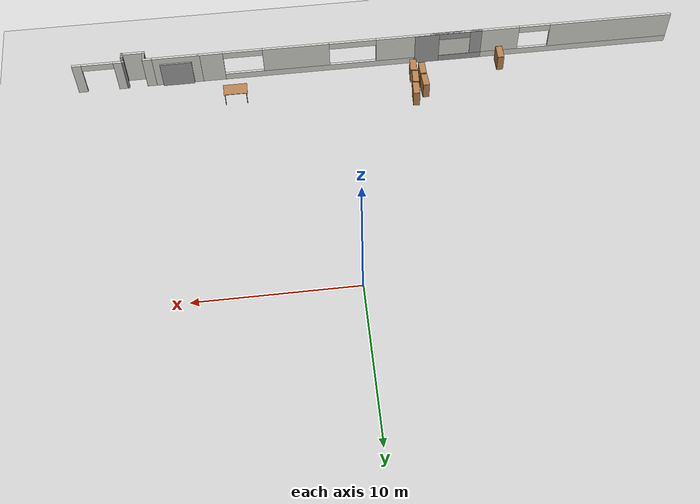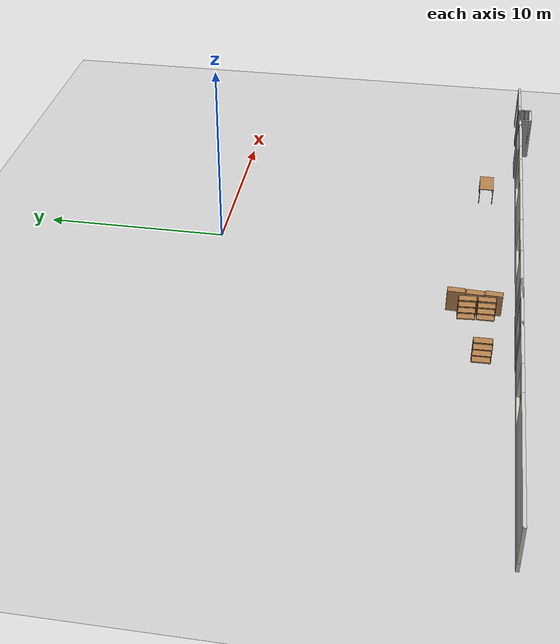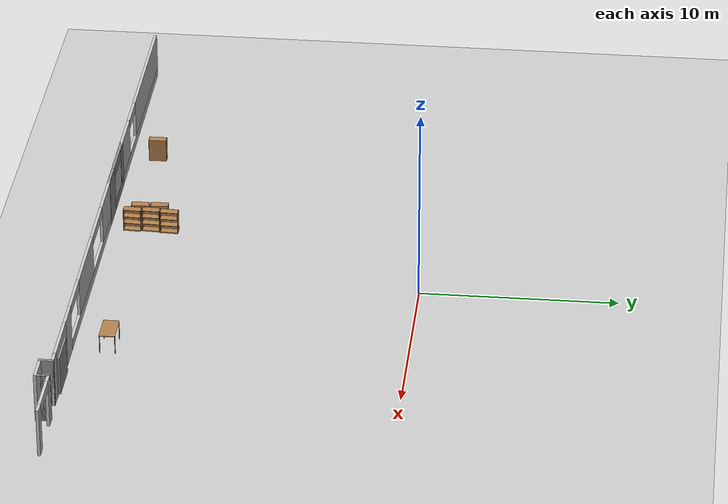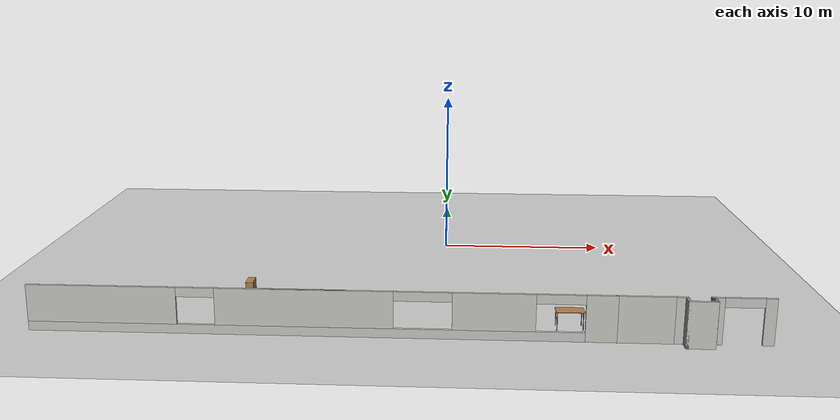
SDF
<sdf version="1.7">
 <world name="default">
  <model name="ground_plane">
   <static>1</static>
   <link name="link">
    <collision name="collision">
     <geometry><plane><normal>0 0 1</normal><size>100 100</size></plane></geometry>
     <surface><friction><ode><mu>100</mu><mu2>50</mu2></ode></friction></surface>
    </collision>
    <visual name="visual">
     <cast_shadows>0</cast_shadows>
     <geometry><plane><normal>0 0 1</normal><size>100 100</size></plane></geometry>
     <material>
      <script><uri>file://media/materials/scripts/gazebo.material</uri><name>Gazebo/Grey</name></script>
     </material>
    </visual>
   </link>
  </model>
  <model name="cps_lab_layout">
   <pose>-2.5615 -0.338224 0 0 -0 0</pose>
   <link name="Door_24">
    <collision name="Door_24_Collision">
     <geometry><box><size>2 0.17 2</size></box></geometry>
     <pose>0 0 1 0 -0 0</pose>
    </collision>
    <visual name="Door_24_Visual">
     <pose>0 0 1 0 -0 0</pose>
     <geometry><box><size>2 0.17 2</size></box></geometry>
     <material>
      <script><uri>file://media/materials/scripts/gazebo.material</uri><name>Gazebo/Grey</name></script>
     </material>
    </visual>
    <pose>12.706 -16.0168 0 0 -0 0</pose>
   </link>
   <link name="Wall_203">
    <collision name="Wall_203_Collision">
     <geometry><box><size>3 0.15 2.5</size></box></geometry>
     <pose>0 0 1.25 0 -0 0</pose>
    </collision>
    <visual name="Wall_203_Visual">
     <pose>0 0 1.25 0 -0 0</pose>
     <geometry><box><size>3 0.15 2.5</size></box></geometry>
     <material>
      <script><uri>file://media/materials/scripts/gazebo.material</uri><name>Gazebo/CeilingTiled</name></script>
      <ambient>0.760784 0.662745 0.627451 1</ambient>
     </material>
     <meta><layer>0</layer></meta>
    </visual>
    <pose>12.6417 -16.101 0 0 -0 0</pose>
   </link>
   <link name="Wall_210">
    <collision name="Wall_210_Collision">
     <geometry><box><size>0.75 0.15 2.5</size></box></geometry>
     <pose>0 0 1.25 0 -0 0</pose>
    </collision>
    <visual name="Wall_210_Visual">
     <pose>0 0 1.25 0 -0 0</pose>
     <geometry><box><size>0.75 0.15 2.5</size></box></geometry>
     <material>
      <script><uri>file://media/materials/scripts/gazebo.material</uri><name>Gazebo/CeilingTiled</name></script>
      <ambient>0.760784 0.662745 0.627451 1</ambient>
     </material>
     <meta><layer>0</layer></meta>
    </visual>
    <pose>14.3667 -16.101 0 0 -0 0</pose>
   </link>
   <link name="Wall_211">
    <collision name="Wall_211_Collision">
     <geometry><box><size>0.75 0.15 2.5</size></box></geometry>
     <pose>0 0 1.25 0 -0 0</pose>
    </collision>
    <visual name="Wall_211_Visual">
     <pose>0 0 1.25 0 -0 0</pose>
     <geometry><box><size>0.75 0.15 2.5</size></box></geometry>
     <material>
      <script><uri>file://media/materials/scripts/gazebo.material</uri><name>Gazebo/Grey</name></script>
      <ambient>1 1 1 1</ambient>
     </material>
     <meta><layer>0</layer></meta>
    </visual>
    <pose>14.6667 -16.401 0 0 -0 -1.5708</pose>
   </link>
   <link name="Wall_212">
    <collision name="Wall_212_Collision">
     <geometry><box><size>1.5 0.15 2.5</size></box></geometry>
     <pose>0 0 1.25 0 -0 0</pose>
    </collision>
    <visual name="Wall_212_Visual">
     <pose>0 0 1.25 0 -0 0</pose>
     <geometry><box><size>1.5 0.15 2.5</size></box></geometry>
     <material>
      <script><uri>file://media/materials/scripts/gazebo.material</uri><name>Gazebo/CeilingTiled</name></script>
      <ambient>0.760784 0.662745 0.627451 1</ambient>
     </material>
     <meta><layer>0</layer></meta>
    </visual>
    <pose>15.3417 -16.701 0 0 -0 0</pose>
   </link>
   <link name="Wall_213">
    <collision name="Wall_213_Collision">
     <geometry><box><size>0.5 0.15 2.5</size></box></geometry>
     <pose>0 0 1.25 0 -0 0</pose>
    </collision>
    <visual name="Wall_213_Visual">
     <pose>0 0 1.25 0 -0 0</pose>
     <geometry><box><size>0.5 0.15 2.5</size></box></geometry>
     <material>
      <script><uri>file://media/materials/scripts/gazebo.material</uri><name>Gazebo/Grey</name></script>
      <ambient>1 1 1 1</ambient>
     </material>
     <meta><layer>0</layer></meta>
    </visual>
    <pose>16.0167 -16.526 0 0 -0 1.5708</pose>
   </link>
   <link name="Wall_214">
    <collision name="Wall_214_Collision">
     <geometry><box><size>0.25 0.15 2.5</size></box></geometry>
     <pose>0 0 1.25 0 -0 0</pose>
    </collision>
    <visual name="Wall_214_Visual">
     <pose>0 0 1.25 0 -0 0</pose>
     <geometry><box><size>0.25 0.15 2.5</size></box></geometry>
     <material>
      <script><uri>file://media/materials/scripts/gazebo.material</uri><name>Gazebo/Grey</name></script>
      <ambient>1 1 1 1</ambient>
     </material>
     <meta><layer>0</layer></meta>
    </visual>
    <pose>16.0167 -16.301 0 0 -0 1.5708</pose>
   </link>
   <link name="Wall_216">
    <pose>17.5037 -16.0649 0 0 -0 3.14159</pose>
    <visual name="Wall_216_Visual_0">
     <pose>-1.33294 0 1.25 0 -0 0</pose>
     <geometry><box><size>0.584125 0.15 2.5</size></box></geometry>
     <material>
      <script><uri>file://media/materials/scripts/gazebo.material</uri><name>Gazebo/CeilingTiled</name></script>
      <ambient>0.760784 0.662745 0.627451 1</ambient>
     </material>
     <meta><layer>0</layer></meta>
    </visual>
    <collision name="Wall_216_Collision_0">
     <geometry><box><size>0.584125 0.15 2.5</size></box></geometry>
     <pose>-1.33294 0 1.25 0 -0 0</pose>
    </collision>
    <visual name="Wall_216_Visual_1">
     <pose>1.29206 0 1.25 0 -0 0</pose>
     <geometry><box><size>0.665875 0.15 2.5</size></box></geometry>
     <material>
      <script><uri>file://media/materials/scripts/gazebo.material</uri><name>Gazebo/CeilingTiled</name></script>
      <ambient>0.760784 0.662745 0.627451 1</ambient>
     </material>
     <meta><layer>0</layer></meta>
    </visual>
    <collision name="Wall_216_Collision_1">
     <geometry><box><size>0.665875 0.15 2.5</size></box></geometry>
     <pose>1.29206 0 1.25 0 -0 0</pose>
    </collision>
    <visual name="Wall_216_Visual_2">
     <pose>-0.040875 0 2.25 0 -0 0</pose>
     <geometry><box><size>2 0.15 0.5</size></box></geometry>
     <material>
      <script><uri>file://media/materials/scripts/gazebo.material</uri><name>Gazebo/CeilingTiled</name></script>
      <ambient>0.760784 0.662745 0.627451 1</ambient>
     </material>
     <meta><layer>0</layer></meta>
    </visual>
    <collision name="Wall_216_Collision_2">
     <geometry><box><size>2 0.15 0.5</size></box></geometry>
     <pose>-0.040875 0 2.25 0 -0 0</pose>
    </collision>
   </link>
   <link name="Wall_217">
    <collision name="Wall_217_Collision">
     <geometry><box><size>0.442956 0.15 2.5</size></box></geometry>
     <pose>0 0 1.25 0 -0 0</pose>
    </collision>
    <visual name="Wall_217_Visual">
     <pose>0 0 1.25 0 -0 0</pose>
     <geometry><box><size>0.442956 0.15 2.5</size></box></geometry>
     <material>
      <script><uri>file://media/materials/scripts/gazebo.material</uri><name>Gazebo/Grey</name></script>
      <ambient>1 1 1 1</ambient>
     </material>
     <meta><layer>0</layer></meta>
    </visual>
    <pose>15.9852 -16.208 0 0 -0 -1.35395</pose>
   </link>
   <link name="Wall_79">
    <pose>-3.95831 -16.101 0 0 -0 3.14159</pose>
    <visual name="Wall_79_Visual_0">
     <pose>-14.447 0 1.25 0 -0 0</pose>
     <geometry><box><size>1.606 0.15 2.5</size></box></geometry>
     <material>
      <script><uri>file://media/materials/scripts/gazebo.material</uri><name>Gazebo/CeilingTiled</name></script>
      <ambient>0.760784 0.662745 0.627451 1</ambient>
     </material>
     <meta><layer>0</layer></meta>
    </visual>
    <collision name="Wall_79_Collision_0">
     <geometry><box><size>1.606 0.15 2.5</size></box></geometry>
     <pose>-14.447 0 1.25 0 -0 0</pose>
    </collision>
    <visual name="Wall_79_Visual_1">
     <pose>0.803 0 0.25 0 -0 0</pose>
     <geometry><box><size>28.894 0.15 0.5</size></box></geometry>
     <material>
      <script><uri>file://media/materials/scripts/gazebo.material</uri><name>Gazebo/CeilingTiled</name></script>
      <ambient>0.760784 0.662745 0.627451 1</ambient>
     </material>
     <meta><layer>0</layer></meta>
    </visual>
    <collision name="Wall_79_Collision_1">
     <geometry><box><size>28.894 0.15 0.5</size></box></geometry>
     <pose>0.803 0 0.25 0 -0 0</pose>
    </collision>
    <visual name="Wall_79_Visual_2">
     <pose>-9.01853 0 1.5 0 -0 0</pose>
     <geometry><box><size>4.25094 0.15 2</size></box></geometry>
     <material>
      <script><uri>file://media/materials/scripts/gazebo.material</uri><name>Gazebo/CeilingTiled</name></script>
      <ambient>0.760784 0.662745 0.627451 1</ambient>
     </material>
     <meta><layer>0</layer></meta>
    </visual>
    <collision name="Wall_79_Collision_2">
     <geometry><box><size>4.25094 0.15 2</size></box></geometry>
     <pose>-9.01853 0 1.5 0 -0 0</pose>
    </collision>
    <visual name="Wall_79_Visual_3">
     <pose>0.731796 0 1.5 0 -0 0</pose>
     <geometry><box><size>9.24971 0.15 2</size></box></geometry>
     <material>
      <script><uri>file://media/materials/scripts/gazebo.material</uri><name>Gazebo/CeilingTiled</name></script>
      <ambient>0.760784 0.662745 0.627451 1</ambient>
     </material>
     <meta><layer>0</layer></meta>
    </visual>
    <collision name="Wall_79_Collision_3">
     <geometry><box><size>9.24971 0.15 2</size></box></geometry>
     <pose>0.731796 0 1.5 0 -0 0</pose>
    </collision>
    <visual name="Wall_79_Visual_4">
     <pose>11.3033 0 1.5 0 -0 0</pose>
     <geometry><box><size>7.89335 0.15 2</size></box></geometry>
     <material>
      <script><uri>file://media/materials/scripts/gazebo.material</uri><name>Gazebo/CeilingTiled</name></script>
      <ambient>0.760784 0.662745 0.627451 1</ambient>
     </material>
     <meta><layer>0</layer></meta>
    </visual>
    <collision name="Wall_79_Collision_4">
     <geometry><box><size>7.89335 0.15 2</size></box></geometry>
     <pose>11.3033 0 1.5 0 -0 0</pose>
    </collision>
    <visual name="Wall_79_Visual_5">
     <pose>-12.394 0 2.25 0 -0 0</pose>
     <geometry><box><size>2.5 0.15 0.5</size></box></geometry>
     <material>
      <script><uri>file://media/materials/scripts/gazebo.material</uri><name>Gazebo/CeilingTiled</name></script>
      <ambient>0.760784 0.662745 0.627451 1</ambient>
     </material>
     <meta><layer>0</layer></meta>
    </visual>
    <collision name="Wall_79_Collision_5">
     <geometry><box><size>2.5 0.15 0.5</size></box></geometry>
     <pose>-12.394 0 2.25 0 -0 0</pose>
    </collision>
    <visual name="Wall_79_Visual_6">
     <pose>-5.39306 0 2.25 0 -0 0</pose>
     <geometry><box><size>3 0.15 0.5</size></box></geometry>
     <material>
      <script><uri>file://media/materials/scripts/gazebo.material</uri><name>Gazebo/CeilingTiled</name></script>
      <ambient>0.760784 0.662745 0.627451 1</ambient>
     </material>
     <meta><layer>0</layer></meta>
    </visual>
    <collision name="Wall_79_Collision_6">
     <geometry><box><size>3 0.15 0.5</size></box></geometry>
     <pose>-5.39306 0 2.25 0 -0 0</pose>
    </collision>
    <visual name="Wall_79_Visual_7">
     <pose>6.35665 0 2.25 0 -0 0</pose>
     <geometry><box><size>2 0.15 0.5</size></box></geometry>
     <material>
      <script><uri>file://media/materials/scripts/gazebo.material</uri><name>Gazebo/CeilingTiled</name></script>
      <ambient>0.760784 0.662745 0.627451 1</ambient>
     </material>
     <meta><layer>0</layer></meta>
    </visual>
    <collision name="Wall_79_Collision_7">
     <geometry><box><size>2 0.15 0.5</size></box></geometry>
     <pose>6.35665 0 2.25 0 -0 0</pose>
    </collision>
   </link>
   <link name="Wall_84">
    <pose>-4.73452 -16.0903 0 0 -0 3.14159</pose>
    <visual name="Wall_84_Visual_0">
     <pose>-1.37569 0 1.25 0 -0 0</pose>
     <geometry><box><size>1.56897 0.15 2.5</size></box></geometry>
     <material>
      <script><uri>file://media/materials/scripts/gazebo.material</uri><name>Gazebo/Grey</name></script>
      <ambient>1 1 1 1</ambient>
     </material>
     <meta><layer>0</layer></meta>
    </visual>
    <collision name="Wall_84_Collision_0">
     <geometry><box><size>1.56897 0.15 2.5</size></box></geometry>
     <pose>-1.37569 0 1.25 0 -0 0</pose>
    </collision>
    <visual name="Wall_84_Visual_1">
     <pose>0.784487 0 0.25 0 -0 0</pose>
     <geometry><box><size>2.75138 0.15 0.5</size></box></geometry>
     <material>
      <script><uri>file://media/materials/scripts/gazebo.material</uri><name>Gazebo/Grey</name></script>
      <ambient>1 1 1 1</ambient>
     </material>
     <meta><layer>0</layer></meta>
    </visual>
    <collision name="Wall_84_Collision_1">
     <geometry><box><size>2.75138 0.15 0.5</size></box></geometry>
     <pose>0.784487 0 0.25 0 -0 0</pose>
    </collision>
    <visual name="Wall_84_Visual_2">
     <pose>1.78449 0 1.5 0 -0 0</pose>
     <geometry><box><size>0.751384 0.15 2</size></box></geometry>
     <material>
      <script><uri>file://media/materials/scripts/gazebo.material</uri><name>Gazebo/Grey</name></script>
      <ambient>1 1 1 1</ambient>
     </material>
     <meta><layer>0</layer></meta>
    </visual>
    <collision name="Wall_84_Collision_2">
     <geometry><box><size>0.751384 0.15 2</size></box></geometry>
     <pose>1.78449 0 1.5 0 -0 0</pose>
    </collision>
    <visual name="Wall_84_Visual_3">
     <pose>0.408794 0 2.25 0 -0 0</pose>
     <geometry><box><size>2 0.15 0.5</size></box></geometry>
     <material>
      <script><uri>file://media/materials/scripts/gazebo.material</uri><name>Gazebo/Grey</name></script>
      <ambient>1 1 1 1</ambient>
     </material>
     <meta><layer>0</layer></meta>
    </visual>
    <collision name="Wall_84_Collision_3">
     <geometry><box><size>2 0.15 0.5</size></box></geometry>
     <pose>0.408794 0 2.25 0 -0 0</pose>
    </collision>
   </link>
   <static>1</static>
  </model>
  <model name="Table">
   <static>1</static>
   <link name="link">
    <collision name="surface">
     <pose>0 0 1 0 -0 0</pose>
     <geometry><box><size>1.5 0.8 0.03</size></box></geometry>
     <surface><friction><ode><mu>0.6</mu><mu2>0.6</mu2></ode></friction></surface>
    </collision>
    <visual name="visual1">
     <pose>0 0 1 0 -0 0</pose>
     <geometry><box><size>1.5 0.8 0.03</size></box></geometry>
     <material>
      <diffuse>1 1 1 1</diffuse>
      <script><uri>file://media/materials/scripts/gazebo.material</uri><name>Gazebo/Wood</name></script>
      <pbr>
       <metal>
        <albedo_map>https://fuel.ignitionrobotics.org/1.0/openrobotics/models/table/4/files/Table_Diffuse.jpg</albedo_map>
       </metal>
      </pbr>
     </material>
    </visual>
    <collision name="front_left_leg">
     <pose>0.68 0.38 0.5 0 -0 0</pose>
     <geometry><cylinder><radius>0.02</radius><length>1</length></cylinder></geometry>
    </collision>
    <visual name="front_left_leg">
     <pose>0.68 0.38 0.5 0 -0 0</pose>
     <geometry><cylinder><radius>0.02</radius><length>1</length></cylinder></geometry>
     <material>
      <diffuse>0.5 0.5 0.5 1</diffuse>
      <script><uri>file://media/materials/scripts/gazebo.material</uri><name>Gazebo/Grey</name></script>
     </material>
    </visual>
    <collision name="front_right_leg">
     <pose>0.68 -0.38 0.5 0 -0 0</pose>
     <geometry><cylinder><radius>0.02</radius><length>1</length></cylinder></geometry>
    </collision>
    <visual name="front_right_leg">
     <pose>0.68 -0.38 0.5 0 -0 0</pose>
     <geometry><cylinder><radius>0.02</radius><length>1</length></cylinder></geometry>
     <material>
      <diffuse>0.5 0.5 0.5 1</diffuse>
      <script><uri>file://media/materials/scripts/gazebo.material</uri><name>Gazebo/Grey</name></script>
     </material>
    </visual>
    <collision name="back_right_leg">
     <pose>-0.68 -0.38 0.5 0 -0 0</pose>
     <geometry><cylinder><radius>0.02</radius><length>1</length></cylinder></geometry>
    </collision>
    <visual name="back_right_leg">
     <pose>-0.68 -0.38 0.5 0 -0 0</pose>
     <geometry><cylinder><radius>0.02</radius><length>1</length></cylinder></geometry>
     <material>
      <diffuse>0.5 0.5 0.5 1</diffuse>
      <script><uri>file://media/materials/scripts/gazebo.material</uri><name>Gazebo/Grey</name></script>
     </material>
    </visual>
    <collision name="back_left_leg">
     <pose>-0.68 0.38 0.5 0 -0 0</pose>
     <geometry><cylinder><radius>0.02</radius><length>1</length></cylinder></geometry>
    </collision>
    <visual name="back_left_leg">
     <pose>-0.68 0.38 0.5 0 -0 0</pose>
     <geometry><cylinder><radius>0.02</radius><length>1</length></cylinder></geometry>
     <material>
      <diffuse>0.5 0.5 0.5 1</diffuse>
      <script><uri>file://media/materials/scripts/gazebo.material</uri><name>Gazebo/Grey</name></script>
     </material>
    </visual>
   </link>
   <pose>6.54375 -14.6231 0 0 -0 0</pose>
  </model>
  <model name="Bookshelf_1">
   <static>1</static>
   <link name="link">
    <inertial><mass>1</mass></inertial>
    <collision name="back">
     <pose>0 0.005 0.6 0 -0 0</pose>
     <geometry><box><size>0.9 0.01 1.2</size></box></geometry>
    </collision>
    <visual name="visual1">
     <pose>0 0.005 0.6 0 -0 0</pose>
     <geometry><box><size>0.9 0.01 1.2</size></box></geometry>
     <material>
      <diffuse>1 1 1 1</diffuse>
      <script><uri>file://media/materials/scripts/gazebo.material</uri><name>Gazebo/Wood</name></script>
      <pbr>
       <metal>
        <albedo_map>https://fuel.gazebosim.org/1.0/openrobotics/models/bookshelf/4/files/bookshelf_diffuse.jpg</albedo_map>
       </metal>
      </pbr>
     </material>
    </visual>
    <collision name="left_side">
     <pose>0.45 -0.195 0.6 0 -0 0</pose>
     <geometry><box><size>0.02 0.4 1.2</size></box></geometry>
    </collision>
    <visual name="visual2">
     <pose>0.45 -0.195 0.6 0 -0 0</pose>
     <geometry><box><size>0.02 0.4 1.2</size></box></geometry>
     <material>
      <diffuse>1 1 1 1</diffuse>
      <script><uri>file://media/materials/scripts/gazebo.material</uri><name>Gazebo/Wood</name></script>
      <pbr>
       <metal>
        <albedo_map>https://fuel.gazebosim.org/1.0/openrobotics/models/bookshelf/4/files/bookshelf_diffuse.jpg</albedo_map>
       </metal>
      </pbr>
     </material>
    </visual>
    <collision name="right_side">
     <pose>-0.45 -0.195 0.6 0 -0 0</pose>
     <geometry><box><size>0.02 0.4 1.2</size></box></geometry>
    </collision>
    <visual name="visual3">
     <pose>-0.45 -0.195 0.6 0 -0 0</pose>
     <geometry><box><size>0.02 0.4 1.2</size></box></geometry>
     <material>
      <diffuse>1 1 1 1</diffuse>
      <script><uri>file://media/materials/scripts/gazebo.material</uri><name>Gazebo/Wood</name></script>
      <pbr>
       <metal>
        <albedo_map>https://fuel.gazebosim.org/1.0/openrobotics/models/bookshelf/4/files/bookshelf_diffuse.jpg</albedo_map>
       </metal>
      </pbr>
     </material>
    </visual>
    <collision name="bottom">
     <pose>0 -0.195 0.03 0 -0 0</pose>
     <geometry><box><size>0.88 0.4 0.06</size></box></geometry>
    </collision>
    <visual name="visual4">
     <pose>0 -0.195 0.03 0 -0 0</pose>
     <geometry><box><size>0.88 0.4 0.06</size></box></geometry>
     <material>
      <diffuse>1 1 1 1</diffuse>
      <script><uri>file://media/materials/scripts/gazebo.material</uri><name>Gazebo/Wood</name></script>
      <pbr>
       <metal>
        <albedo_map>https://fuel.gazebosim.org/1.0/openrobotics/models/bookshelf/4/files/bookshelf_diffuse.jpg</albedo_map>
       </metal>
      </pbr>
     </material>
    </visual>
    <collision name="top">
     <pose>0 -0.195 1.19 0 -0 0</pose>
     <geometry><box><size>0.88 0.4 0.02</size></box></geometry>
    </collision>
    <visual name="visual5">
     <pose>0 -0.195 1.19 0 -0 0</pose>
     <geometry><box><size>0.88 0.4 0.02</size></box></geometry>
     <material>
      <diffuse>1 1 1 1</diffuse>
      <script><uri>file://media/materials/scripts/gazebo.material</uri><name>Gazebo/Wood</name></script>
      <pbr>
       <metal>
        <albedo_map>https://fuel.gazebosim.org/1.0/openrobotics/models/bookshelf/4/files/bookshelf_diffuse.jpg</albedo_map>
       </metal>
      </pbr>
     </material>
    </visual>
    <collision name="low_shelf">
     <pose>0 -0.195 0.43 0 -0 0</pose>
     <geometry><box><size>0.88 0.4 0.02</size></box></geometry>
    </collision>
    <visual name="visual6">
     <pose>0 -0.195 0.43 0 -0 0</pose>
     <geometry><box><size>0.88 0.4 0.02</size></box></geometry>
     <material>
      <diffuse>1 1 1 1</diffuse>
      <script><uri>file://media/materials/scripts/gazebo.material</uri><name>Gazebo/Wood</name></script>
      <pbr>
       <metal>
        <albedo_map>https://fuel.gazebosim.org/1.0/openrobotics/models/bookshelf/4/files/bookshelf_diffuse.jpg</albedo_map>
       </metal>
      </pbr>
     </material>
    </visual>
    <collision name="high_shelf">
     <pose>0 -0.195 0.8 0 -0 0</pose>
     <geometry><box><size>0.88 0.4 0.02</size></box></geometry>
    </collision>
    <visual name="visual7">
     <pose>0 -0.195 0.8 0 -0 0</pose>
     <geometry><box><size>0.88 0.4 0.02</size></box></geometry>
     <material>
      <diffuse>1 1 1 1</diffuse>
      <script><uri>file://media/materials/scripts/gazebo.material</uri><name>Gazebo/Wood</name></script>
      <pbr>
       <metal>
        <albedo_map>https://fuel.gazebosim.org/1.0/openrobotics/models/bookshelf/4/files/bookshelf_diffuse.jpg</albedo_map>
       </metal>
      </pbr>
     </material>
    </visual>
   </link>
   <pose>-5.28631 -13.8634 0 0 0 -1.50561</pose>
  </model>
  <model name="Bookshelf_2">
   <static>1</static>
   <link name="link">
    <inertial><mass>1</mass></inertial>
    <collision name="back">
     <pose>0 0.005 0.6 0 -0 0</pose>
     <geometry><box><size>0.9 0.01 1.2</size></box></geometry>
    </collision>
    <visual name="visual1">
     <pose>0 0.005 0.6 0 -0 0</pose>
     <geometry><box><size>0.9 0.01 1.2</size></box></geometry>
     <material>
      <diffuse>1 1 1 1</diffuse>
      <script><uri>file://media/materials/scripts/gazebo.material</uri><name>Gazebo/Wood</name></script>
      <pbr>
       <metal>
        <albedo_map>https://fuel.gazebosim.org/1.0/openrobotics/models/bookshelf/4/files/bookshelf_diffuse.jpg</albedo_map>
       </metal>
      </pbr>
     </material>
    </visual>
    <collision name="left_side">
     <pose>0.45 -0.195 0.6 0 -0 0</pose>
     <geometry><box><size>0.02 0.4 1.2</size></box></geometry>
    </collision>
    <visual name="visual2">
     <pose>0.45 -0.195 0.6 0 -0 0</pose>
     <geometry><box><size>0.02 0.4 1.2</size></box></geometry>
     <material>
      <diffuse>1 1 1 1</diffuse>
      <script><uri>file://media/materials/scripts/gazebo.material</uri><name>Gazebo/Wood</name></script>
      <pbr>
       <metal>
        <albedo_map>https://fuel.gazebosim.org/1.0/openrobotics/models/bookshelf/4/files/bookshelf_diffuse.jpg</albedo_map>
       </metal>
      </pbr>
     </material>
    </visual>
    <collision name="right_side">
     <pose>-0.45 -0.195 0.6 0 -0 0</pose>
     <geometry><box><size>0.02 0.4 1.2</size></box></geometry>
    </collision>
    <visual name="visual3">
     <pose>-0.45 -0.195 0.6 0 -0 0</pose>
     <geometry><box><size>0.02 0.4 1.2</size></box></geometry>
     <material>
      <diffuse>1 1 1 1</diffuse>
      <script><uri>file://media/materials/scripts/gazebo.material</uri><name>Gazebo/Wood</name></script>
      <pbr>
       <metal>
        <albedo_map>https://fuel.gazebosim.org/1.0/openrobotics/models/bookshelf/4/files/bookshelf_diffuse.jpg</albedo_map>
       </metal>
      </pbr>
     </material>
    </visual>
    <collision name="bottom">
     <pose>0 -0.195 0.03 0 -0 0</pose>
     <geometry><box><size>0.88 0.4 0.06</size></box></geometry>
    </collision>
    <visual name="visual4">
     <pose>0 -0.195 0.03 0 -0 0</pose>
     <geometry><box><size>0.88 0.4 0.06</size></box></geometry>
     <material>
      <diffuse>1 1 1 1</diffuse>
      <script><uri>file://media/materials/scripts/gazebo.material</uri><name>Gazebo/Wood</name></script>
      <pbr>
       <metal>
        <albedo_map>https://fuel.gazebosim.org/1.0/openrobotics/models/bookshelf/4/files/bookshelf_diffuse.jpg</albedo_map>
       </metal>
      </pbr>
     </material>
    </visual>
    <collision name="top">
     <pose>0 -0.195 1.19 0 -0 0</pose>
     <geometry><box><size>0.88 0.4 0.02</size></box></geometry>
    </collision>
    <visual name="visual5">
     <pose>0 -0.195 1.19 0 -0 0</pose>
     <geometry><box><size>0.88 0.4 0.02</size></box></geometry>
     <material>
      <diffuse>1 1 1 1</diffuse>
      <script><uri>file://media/materials/scripts/gazebo.material</uri><name>Gazebo/Wood</name></script>
      <pbr>
       <metal>
        <albedo_map>https://fuel.gazebosim.org/1.0/openrobotics/models/bookshelf/4/files/bookshelf_diffuse.jpg</albedo_map>
       </metal>
      </pbr>
     </material>
    </visual>
    <collision name="low_shelf">
     <pose>0 -0.195 0.43 0 -0 0</pose>
     <geometry><box><size>0.88 0.4 0.02</size></box></geometry>
    </collision>
    <visual name="visual6">
     <pose>0 -0.195 0.43 0 -0 0</pose>
     <geometry><box><size>0.88 0.4 0.02</size></box></geometry>
     <material>
      <diffuse>1 1 1 1</diffuse>
      <script><uri>file://media/materials/scripts/gazebo.material</uri><name>Gazebo/Wood</name></script>
      <pbr>
       <metal>
        <albedo_map>https://fuel.gazebosim.org/1.0/openrobotics/models/bookshelf/4/files/bookshelf_diffuse.jpg</albedo_map>
       </metal>
      </pbr>
     </material>
    </visual>
    <collision name="high_shelf">
     <pose>0 -0.195 0.8 0 -0 0</pose>
     <geometry><box><size>0.88 0.4 0.02</size></box></geometry>
    </collision>
    <visual name="visual7">
     <pose>0 -0.195 0.8 0 -0 0</pose>
     <geometry><box><size>0.88 0.4 0.02</size></box></geometry>
     <material>
      <diffuse>1 1 1 1</diffuse>
      <script><uri>file://media/materials/scripts/gazebo.material</uri><name>Gazebo/Wood</name></script>
      <pbr>
       <metal>
        <albedo_map>https://fuel.gazebosim.org/1.0/openrobotics/models/bookshelf/4/files/bookshelf_diffuse.jpg</albedo_map>
       </metal>
      </pbr>
     </material>
    </visual>
   </link>
   <pose>-5.23927 -14.8593 0 0 0 -1.55053</pose>
  </model>
  <model name="Bookshelf_clone">
   <static>1</static>
   <link name="link">
    <inertial><mass>1</mass></inertial>
    <collision name="back">
     <pose>0 0.005 0.6 0 -0 0</pose>
     <geometry><box><size>0.9 0.01 1.2</size></box></geometry>
    </collision>
    <visual name="visual1">
     <pose>0 0.005 0.6 0 -0 0</pose>
     <geometry><box><size>0.9 0.01 1.2</size></box></geometry>
     <material>
      <diffuse>1 1 1 1</diffuse>
      <script><uri>file://media/materials/scripts/gazebo.material</uri><name>Gazebo/Wood</name></script>
      <pbr>
       <metal>
        <albedo_map>https://fuel.gazebosim.org/1.0/openrobotics/models/bookshelf/4/files/bookshelf_diffuse.jpg</albedo_map>
       </metal>
      </pbr>
     </material>
    </visual>
    <collision name="left_side">
     <pose>0.45 -0.195 0.6 0 -0 0</pose>
     <geometry><box><size>0.02 0.4 1.2</size></box></geometry>
    </collision>
    <visual name="visual2">
     <pose>0.45 -0.195 0.6 0 -0 0</pose>
     <geometry><box><size>0.02 0.4 1.2</size></box></geometry>
     <material>
      <diffuse>1 1 1 1</diffuse>
      <script><uri>file://media/materials/scripts/gazebo.material</uri><name>Gazebo/Wood</name></script>
      <pbr>
       <metal>
        <albedo_map>https://fuel.gazebosim.org/1.0/openrobotics/models/bookshelf/4/files/bookshelf_diffuse.jpg</albedo_map>
       </metal>
      </pbr>
     </material>
    </visual>
    <collision name="right_side">
     <pose>-0.45 -0.195 0.6 0 -0 0</pose>
     <geometry><box><size>0.02 0.4 1.2</size></box></geometry>
    </collision>
    <visual name="visual3">
     <pose>-0.45 -0.195 0.6 0 -0 0</pose>
     <geometry><box><size>0.02 0.4 1.2</size></box></geometry>
     <material>
      <diffuse>1 1 1 1</diffuse>
      <script><uri>file://media/materials/scripts/gazebo.material</uri><name>Gazebo/Wood</name></script>
      <pbr>
       <metal>
        <albedo_map>https://fuel.gazebosim.org/1.0/openrobotics/models/bookshelf/4/files/bookshelf_diffuse.jpg</albedo_map>
       </metal>
      </pbr>
     </material>
    </visual>
    <collision name="bottom">
     <pose>0 -0.195 0.03 0 -0 0</pose>
     <geometry><box><size>0.88 0.4 0.06</size></box></geometry>
    </collision>
    <visual name="visual4">
     <pose>0 -0.195 0.03 0 -0 0</pose>
     <geometry><box><size>0.88 0.4 0.06</size></box></geometry>
     <material>
      <diffuse>1 1 1 1</diffuse>
      <script><uri>file://media/materials/scripts/gazebo.material</uri><name>Gazebo/Wood</name></script>
      <pbr>
       <metal>
        <albedo_map>https://fuel.gazebosim.org/1.0/openrobotics/models/bookshelf/4/files/bookshelf_diffuse.jpg</albedo_map>
       </metal>
      </pbr>
     </material>
    </visual>
    <collision name="top">
     <pose>0 -0.195 1.19 0 -0 0</pose>
     <geometry><box><size>0.88 0.4 0.02</size></box></geometry>
    </collision>
    <visual name="visual5">
     <pose>0 -0.195 1.19 0 -0 0</pose>
     <geometry><box><size>0.88 0.4 0.02</size></box></geometry>
     <material>
      <diffuse>1 1 1 1</diffuse>
      <script><uri>file://media/materials/scripts/gazebo.material</uri><name>Gazebo/Wood</name></script>
      <pbr>
       <metal>
        <albedo_map>https://fuel.gazebosim.org/1.0/openrobotics/models/bookshelf/4/files/bookshelf_diffuse.jpg</albedo_map>
       </metal>
      </pbr>
     </material>
    </visual>
    <collision name="low_shelf">
     <pose>0 -0.195 0.43 0 -0 0</pose>
     <geometry><box><size>0.88 0.4 0.02</size></box></geometry>
    </collision>
    <visual name="visual6">
     <pose>0 -0.195 0.43 0 -0 0</pose>
     <geometry><box><size>0.88 0.4 0.02</size></box></geometry>
     <material>
      <diffuse>1 1 1 1</diffuse>
      <script><uri>file://media/materials/scripts/gazebo.material</uri><name>Gazebo/Wood</name></script>
      <pbr>
       <metal>
        <albedo_map>https://fuel.gazebosim.org/1.0/openrobotics/models/bookshelf/4/files/bookshelf_diffuse.jpg</albedo_map>
       </metal>
      </pbr>
     </material>
    </visual>
    <collision name="high_shelf">
     <pose>0 -0.195 0.8 0 -0 0</pose>
     <geometry><box><size>0.88 0.4 0.02</size></box></geometry>
    </collision>
    <visual name="visual7">
     <pose>0 -0.195 0.8 0 -0 0</pose>
     <geometry><box><size>0.88 0.4 0.02</size></box></geometry>
     <material>
      <diffuse>1 1 1 1</diffuse>
      <script><uri>file://media/materials/scripts/gazebo.material</uri><name>Gazebo/Wood</name></script>
      <pbr>
       <metal>
        <albedo_map>https://fuel.gazebosim.org/1.0/openrobotics/models/bookshelf/4/files/bookshelf_diffuse.jpg</albedo_map>
       </metal>
      </pbr>
     </material>
    </visual>
   </link>
   <pose>-5.10787 -14.2255 0 0 -0 1.51984</pose>
  </model>
  <model name="Bookshelf_clone_0">
   <static>1</static>
   <link name="link">
    <inertial><mass>1</mass></inertial>
    <collision name="back">
     <pose>0 0.005 0.6 0 -0 0</pose>
     <geometry><box><size>0.9 0.01 1.2</size></box></geometry>
    </collision>
    <visual name="visual1">
     <pose>0 0.005 0.6 0 -0 0</pose>
     <geometry><box><size>0.9 0.01 1.2</size></box></geometry>
     <material>
      <diffuse>1 1 1 1</diffuse>
      <script><uri>file://media/materials/scripts/gazebo.material</uri><name>Gazebo/Wood</name></script>
      <pbr>
       <metal>
        <albedo_map>https://fuel.gazebosim.org/1.0/openrobotics/models/bookshelf/4/files/bookshelf_diffuse.jpg</albedo_map>
       </metal>
      </pbr>
     </material>
    </visual>
    <collision name="left_side">
     <pose>0.45 -0.195 0.6 0 -0 0</pose>
     <geometry><box><size>0.02 0.4 1.2</size></box></geometry>
    </collision>
    <visual name="visual2">
     <pose>0.45 -0.195 0.6 0 -0 0</pose>
     <geometry><box><size>0.02 0.4 1.2</size></box></geometry>
     <material>
      <diffuse>1 1 1 1</diffuse>
      <script><uri>file://media/materials/scripts/gazebo.material</uri><name>Gazebo/Wood</name></script>
      <pbr>
       <metal>
        <albedo_map>https://fuel.gazebosim.org/1.0/openrobotics/models/bookshelf/4/files/bookshelf_diffuse.jpg</albedo_map>
       </metal>
      </pbr>
     </material>
    </visual>
    <collision name="right_side">
     <pose>-0.45 -0.195 0.6 0 -0 0</pose>
     <geometry><box><size>0.02 0.4 1.2</size></box></geometry>
    </collision>
    <visual name="visual3">
     <pose>-0.45 -0.195 0.6 0 -0 0</pose>
     <geometry><box><size>0.02 0.4 1.2</size></box></geometry>
     <material>
      <diffuse>1 1 1 1</diffuse>
      <script><uri>file://media/materials/scripts/gazebo.material</uri><name>Gazebo/Wood</name></script>
      <pbr>
       <metal>
        <albedo_map>https://fuel.gazebosim.org/1.0/openrobotics/models/bookshelf/4/files/bookshelf_diffuse.jpg</albedo_map>
       </metal>
      </pbr>
     </material>
    </visual>
    <collision name="bottom">
     <pose>0 -0.195 0.03 0 -0 0</pose>
     <geometry><box><size>0.88 0.4 0.06</size></box></geometry>
    </collision>
    <visual name="visual4">
     <pose>0 -0.195 0.03 0 -0 0</pose>
     <geometry><box><size>0.88 0.4 0.06</size></box></geometry>
     <material>
      <diffuse>1 1 1 1</diffuse>
      <script><uri>file://media/materials/scripts/gazebo.material</uri><name>Gazebo/Wood</name></script>
      <pbr>
       <metal>
        <albedo_map>https://fuel.gazebosim.org/1.0/openrobotics/models/bookshelf/4/files/bookshelf_diffuse.jpg</albedo_map>
       </metal>
      </pbr>
     </material>
    </visual>
    <collision name="top">
     <pose>0 -0.195 1.19 0 -0 0</pose>
     <geometry><box><size>0.88 0.4 0.02</size></box></geometry>
    </collision>
    <visual name="visual5">
     <pose>0 -0.195 1.19 0 -0 0</pose>
     <geometry><box><size>0.88 0.4 0.02</size></box></geometry>
     <material>
      <diffuse>1 1 1 1</diffuse>
      <script><uri>file://media/materials/scripts/gazebo.material</uri><name>Gazebo/Wood</name></script>
      <pbr>
       <metal>
        <albedo_map>https://fuel.gazebosim.org/1.0/openrobotics/models/bookshelf/4/files/bookshelf_diffuse.jpg</albedo_map>
       </metal>
      </pbr>
     </material>
    </visual>
    <collision name="low_shelf">
     <pose>0 -0.195 0.43 0 -0 0</pose>
     <geometry><box><size>0.88 0.4 0.02</size></box></geometry>
    </collision>
    <visual name="visual6">
     <pose>0 -0.195 0.43 0 -0 0</pose>
     <geometry><box><size>0.88 0.4 0.02</size></box></geometry>
     <material>
      <diffuse>1 1 1 1</diffuse>
      <script><uri>file://media/materials/scripts/gazebo.material</uri><name>Gazebo/Wood</name></script>
      <pbr>
       <metal>
        <albedo_map>https://fuel.gazebosim.org/1.0/openrobotics/models/bookshelf/4/files/bookshelf_diffuse.jpg</albedo_map>
       </metal>
      </pbr>
     </material>
    </visual>
    <collision name="high_shelf">
     <pose>0 -0.195 0.8 0 -0 0</pose>
     <geometry><box><size>0.88 0.4 0.02</size></box></geometry>
    </collision>
    <visual name="visual7">
     <pose>0 -0.195 0.8 0 -0 0</pose>
     <geometry><box><size>0.88 0.4 0.02</size></box></geometry>
     <material>
      <diffuse>1 1 1 1</diffuse>
      <script><uri>file://media/materials/scripts/gazebo.material</uri><name>Gazebo/Wood</name></script>
      <pbr>
       <metal>
        <albedo_map>https://fuel.gazebosim.org/1.0/openrobotics/models/bookshelf/4/files/bookshelf_diffuse.jpg</albedo_map>
       </metal>
      </pbr>
     </material>
    </visual>
   </link>
   <pose>-5.07731 -15.1828 0 0 -0 1.50357</pose>
  </model>
  <model name="Bookshelf_clone_1">
   <static>1</static>
   <link name="link">
    <inertial><mass>1</mass></inertial>
    <collision name="back">
     <pose>0 0.005 0.6 0 -0 0</pose>
     <geometry><box><size>0.9 0.01 1.2</size></box></geometry>
    </collision>
    <visual name="visual1">
     <pose>0 0.005 0.6 0 -0 0</pose>
     <geometry><box><size>0.9 0.01 1.2</size></box></geometry>
     <material>
      <diffuse>1 1 1 1</diffuse>
      <script><uri>file://media/materials/scripts/gazebo.material</uri><name>Gazebo/Wood</name></script>
      <pbr>
       <metal>
        <albedo_map>https://fuel.gazebosim.org/1.0/openrobotics/models/bookshelf/4/files/bookshelf_diffuse.jpg</albedo_map>
       </metal>
      </pbr>
     </material>
    </visual>
    <collision name="left_side">
     <pose>0.45 -0.195 0.6 0 -0 0</pose>
     <geometry><box><size>0.02 0.4 1.2</size></box></geometry>
    </collision>
    <visual name="visual2">
     <pose>0.45 -0.195 0.6 0 -0 0</pose>
     <geometry><box><size>0.02 0.4 1.2</size></box></geometry>
     <material>
      <diffuse>1 1 1 1</diffuse>
      <script><uri>file://media/materials/scripts/gazebo.material</uri><name>Gazebo/Wood</name></script>
      <pbr>
       <metal>
        <albedo_map>https://fuel.gazebosim.org/1.0/openrobotics/models/bookshelf/4/files/bookshelf_diffuse.jpg</albedo_map>
       </metal>
      </pbr>
     </material>
    </visual>
    <collision name="right_side">
     <pose>-0.45 -0.195 0.6 0 -0 0</pose>
     <geometry><box><size>0.02 0.4 1.2</size></box></geometry>
    </collision>
    <visual name="visual3">
     <pose>-0.45 -0.195 0.6 0 -0 0</pose>
     <geometry><box><size>0.02 0.4 1.2</size></box></geometry>
     <material>
      <diffuse>1 1 1 1</diffuse>
      <script><uri>file://media/materials/scripts/gazebo.material</uri><name>Gazebo/Wood</name></script>
      <pbr>
       <metal>
        <albedo_map>https://fuel.gazebosim.org/1.0/openrobotics/models/bookshelf/4/files/bookshelf_diffuse.jpg</albedo_map>
       </metal>
      </pbr>
     </material>
    </visual>
    <collision name="bottom">
     <pose>0 -0.195 0.03 0 -0 0</pose>
     <geometry><box><size>0.88 0.4 0.06</size></box></geometry>
    </collision>
    <visual name="visual4">
     <pose>0 -0.195 0.03 0 -0 0</pose>
     <geometry><box><size>0.88 0.4 0.06</size></box></geometry>
     <material>
      <diffuse>1 1 1 1</diffuse>
      <script><uri>file://media/materials/scripts/gazebo.material</uri><name>Gazebo/Wood</name></script>
      <pbr>
       <metal>
        <albedo_map>https://fuel.gazebosim.org/1.0/openrobotics/models/bookshelf/4/files/bookshelf_diffuse.jpg</albedo_map>
       </metal>
      </pbr>
     </material>
    </visual>
    <collision name="top">
     <pose>0 -0.195 1.19 0 -0 0</pose>
     <geometry><box><size>0.88 0.4 0.02</size></box></geometry>
    </collision>
    <visual name="visual5">
     <pose>0 -0.195 1.19 0 -0 0</pose>
     <geometry><box><size>0.88 0.4 0.02</size></box></geometry>
     <material>
      <diffuse>1 1 1 1</diffuse>
      <script><uri>file://media/materials/scripts/gazebo.material</uri><name>Gazebo/Wood</name></script>
      <pbr>
       <metal>
        <albedo_map>https://fuel.gazebosim.org/1.0/openrobotics/models/bookshelf/4/files/bookshelf_diffuse.jpg</albedo_map>
       </metal>
      </pbr>
     </material>
    </visual>
    <collision name="low_shelf">
     <pose>0 -0.195 0.43 0 -0 0</pose>
     <geometry><box><size>0.88 0.4 0.02</size></box></geometry>
    </collision>
    <visual name="visual6">
     <pose>0 -0.195 0.43 0 -0 0</pose>
     <geometry><box><size>0.88 0.4 0.02</size></box></geometry>
     <material>
      <diffuse>1 1 1 1</diffuse>
      <script><uri>file://media/materials/scripts/gazebo.material</uri><name>Gazebo/Wood</name></script>
      <pbr>
       <metal>
        <albedo_map>https://fuel.gazebosim.org/1.0/openrobotics/models/bookshelf/4/files/bookshelf_diffuse.jpg</albedo_map>
       </metal>
      </pbr>
     </material>
    </visual>
    <collision name="high_shelf">
     <pose>0 -0.195 0.8 0 -0 0</pose>
     <geometry><box><size>0.88 0.4 0.02</size></box></geometry>
    </collision>
    <visual name="visual7">
     <pose>0 -0.195 0.8 0 -0 0</pose>
     <geometry><box><size>0.88 0.4 0.02</size></box></geometry>
     <material>
      <diffuse>1 1 1 1</diffuse>
      <script><uri>file://media/materials/scripts/gazebo.material</uri><name>Gazebo/Wood</name></script>
      <pbr>
       <metal>
        <albedo_map>https://fuel.gazebosim.org/1.0/openrobotics/models/bookshelf/4/files/bookshelf_diffuse.jpg</albedo_map>
       </metal>
      </pbr>
     </material>
    </visual>
   </link>
   <pose>-5.02804 -13.2768 0 0 -0 1.53145</pose>
  </model>
  <model name="Bookshelf_0_clone_clone_4_clone">
   <static>1</static>
   <link name="link">
    <inertial><mass>1</mass></inertial>
    <collision name="back">
     <pose>0 0.005 0.6 0 -0 0</pose>
     <geometry><box><size>0.9 0.01 1.2</size></box></geometry>
    </collision>
    <visual name="visual1">
     <pose>0 0.005 0.6 0 -0 0</pose>
     <geometry><box><size>0.9 0.01 1.2</size></box></geometry>
     <material>
      <diffuse>1 1 1 1</diffuse>
      <script><uri>file://media/materials/scripts/gazebo.material</uri><name>Gazebo/Wood</name></script>
      <pbr>
       <metal>
        <albedo_map>https://fuel.gazebosim.org/1.0/openrobotics/models/bookshelf/4/files/bookshelf_diffuse.jpg</albedo_map>
       </metal>
      </pbr>
     </material>
    </visual>
    <collision name="left_side">
     <pose>0.45 -0.195 0.6 0 -0 0</pose>
     <geometry><box><size>0.02 0.4 1.2</size></box></geometry>
    </collision>
    <visual name="visual2">
     <pose>0.45 -0.195 0.6 0 -0 0</pose>
     <geometry><box><size>0.02 0.4 1.2</size></box></geometry>
     <material>
      <diffuse>1 1 1 1</diffuse>
      <script><uri>file://media/materials/scripts/gazebo.material</uri><name>Gazebo/Wood</name></script>
      <pbr>
       <metal>
        <albedo_map>https://fuel.gazebosim.org/1.0/openrobotics/models/bookshelf/4/files/bookshelf_diffuse.jpg</albedo_map>
       </metal>
      </pbr>
     </material>
    </visual>
    <collision name="right_side">
     <pose>-0.45 -0.195 0.6 0 -0 0</pose>
     <geometry><box><size>0.02 0.4 1.2</size></box></geometry>
    </collision>
    <visual name="visual3">
     <pose>-0.45 -0.195 0.6 0 -0 0</pose>
     <geometry><box><size>0.02 0.4 1.2</size></box></geometry>
     <material>
      <diffuse>1 1 1 1</diffuse>
      <script><uri>file://media/materials/scripts/gazebo.material</uri><name>Gazebo/Wood</name></script>
      <pbr>
       <metal>
        <albedo_map>https://fuel.gazebosim.org/1.0/openrobotics/models/bookshelf/4/files/bookshelf_diffuse.jpg</albedo_map>
       </metal>
      </pbr>
     </material>
    </visual>
    <collision name="bottom">
     <pose>0 -0.195 0.03 0 -0 0</pose>
     <geometry><box><size>0.88 0.4 0.06</size></box></geometry>
    </collision>
    <visual name="visual4">
     <pose>0 -0.195 0.03 0 -0 0</pose>
     <geometry><box><size>0.88 0.4 0.06</size></box></geometry>
     <material>
      <diffuse>1 1 1 1</diffuse>
      <script><uri>file://media/materials/scripts/gazebo.material</uri><name>Gazebo/Wood</name></script>
      <pbr>
       <metal>
        <albedo_map>https://fuel.gazebosim.org/1.0/openrobotics/models/bookshelf/4/files/bookshelf_diffuse.jpg</albedo_map>
       </metal>
      </pbr>
     </material>
    </visual>
    <collision name="top">
     <pose>0 -0.195 1.19 0 -0 0</pose>
     <geometry><box><size>0.88 0.4 0.02</size></box></geometry>
    </collision>
    <visual name="visual5">
     <pose>0 -0.195 1.19 0 -0 0</pose>
     <geometry><box><size>0.88 0.4 0.02</size></box></geometry>
     <material>
      <diffuse>1 1 1 1</diffuse>
      <script><uri>file://media/materials/scripts/gazebo.material</uri><name>Gazebo/Wood</name></script>
      <pbr>
       <metal>
        <albedo_map>https://fuel.gazebosim.org/1.0/openrobotics/models/bookshelf/4/files/bookshelf_diffuse.jpg</albedo_map>
       </metal>
      </pbr>
     </material>
    </visual>
    <collision name="low_shelf">
     <pose>0 -0.195 0.43 0 -0 0</pose>
     <geometry><box><size>0.88 0.4 0.02</size></box></geometry>
    </collision>
    <visual name="visual6">
     <pose>0 -0.195 0.43 0 -0 0</pose>
     <geometry><box><size>0.88 0.4 0.02</size></box></geometry>
     <material>
      <diffuse>1 1 1 1</diffuse>
      <script><uri>file://media/materials/scripts/gazebo.material</uri><name>Gazebo/Wood</name></script>
      <pbr>
       <metal>
        <albedo_map>https://fuel.gazebosim.org/1.0/openrobotics/models/bookshelf/4/files/bookshelf_diffuse.jpg</albedo_map>
       </metal>
      </pbr>
     </material>
    </visual>
    <collision name="high_shelf">
     <pose>0 -0.195 0.8 0 -0 0</pose>
     <geometry><box><size>0.88 0.4 0.02</size></box></geometry>
    </collision>
    <visual name="visual7">
     <pose>0 -0.195 0.8 0 -0 0</pose>
     <geometry><box><size>0.88 0.4 0.02</size></box></geometry>
     <material>
      <diffuse>1 1 1 1</diffuse>
      <script><uri>file://media/materials/scripts/gazebo.material</uri><name>Gazebo/Wood</name></script>
      <pbr>
       <metal>
        <albedo_map>https://fuel.gazebosim.org/1.0/openrobotics/models/bookshelf/4/files/bookshelf_diffuse.jpg</albedo_map>
       </metal>
      </pbr>
     </material>
    </visual>
   </link>
   <pose>-10.1176 -14.6384 1.15341 0 0 -1.55424</pose>
  </model>
 </world>
</sdf>
